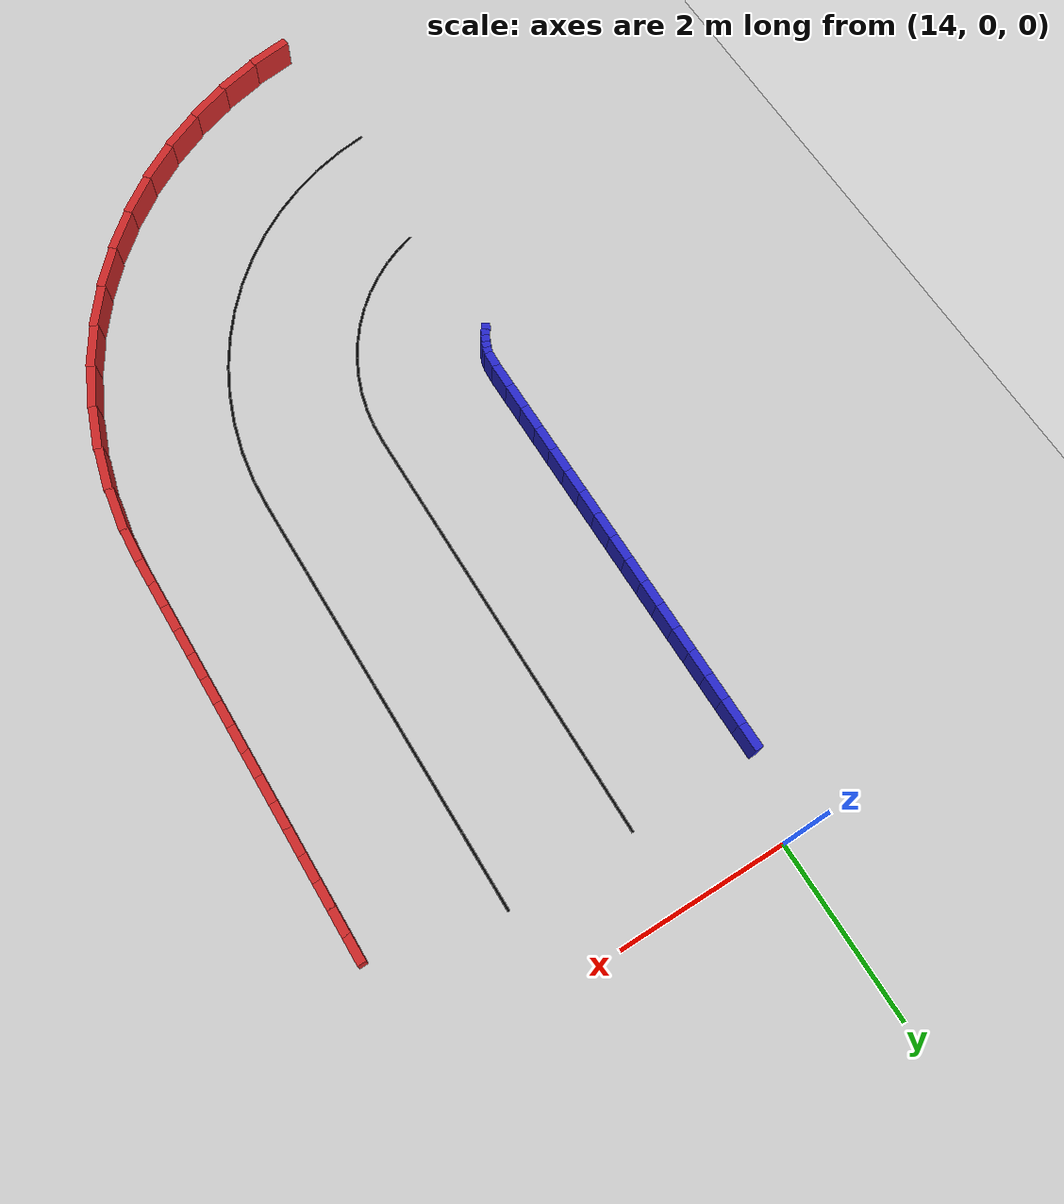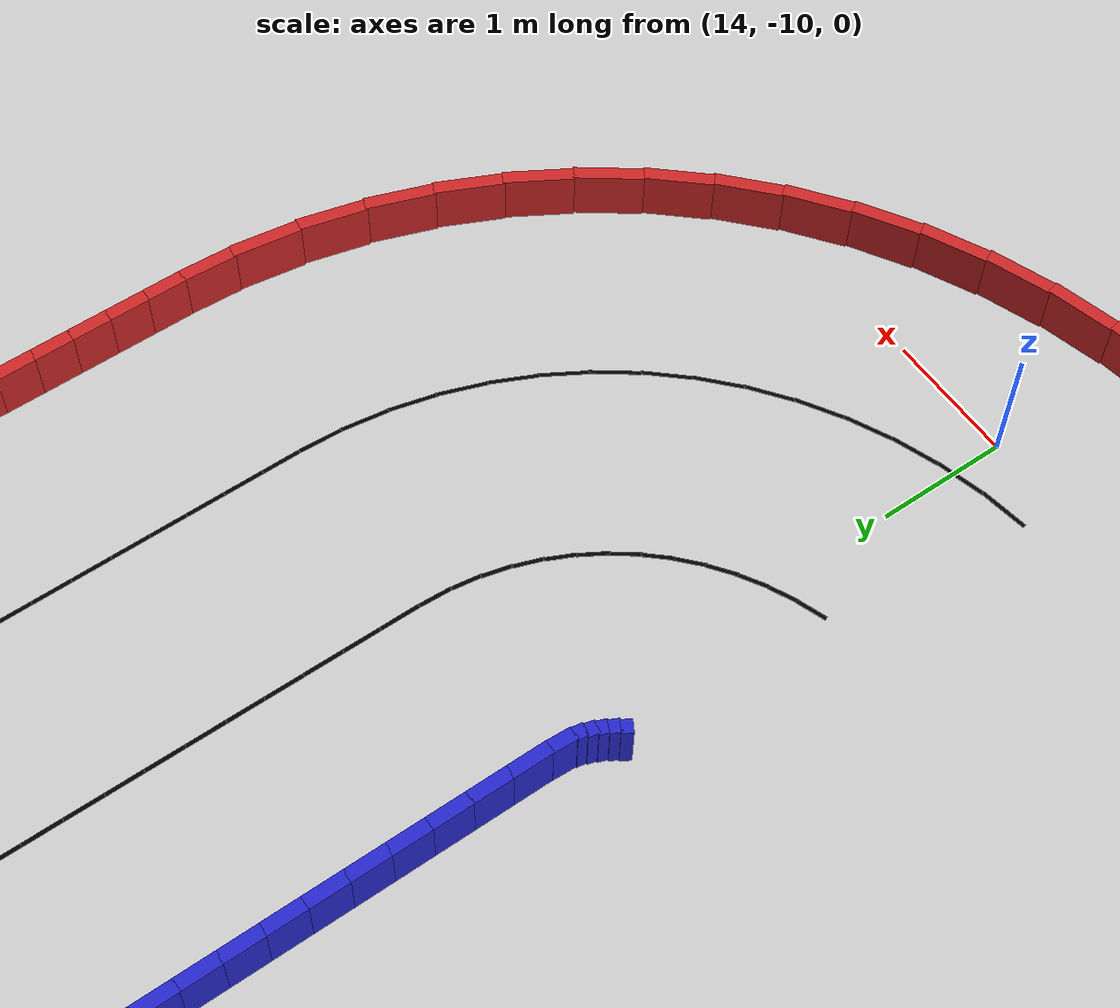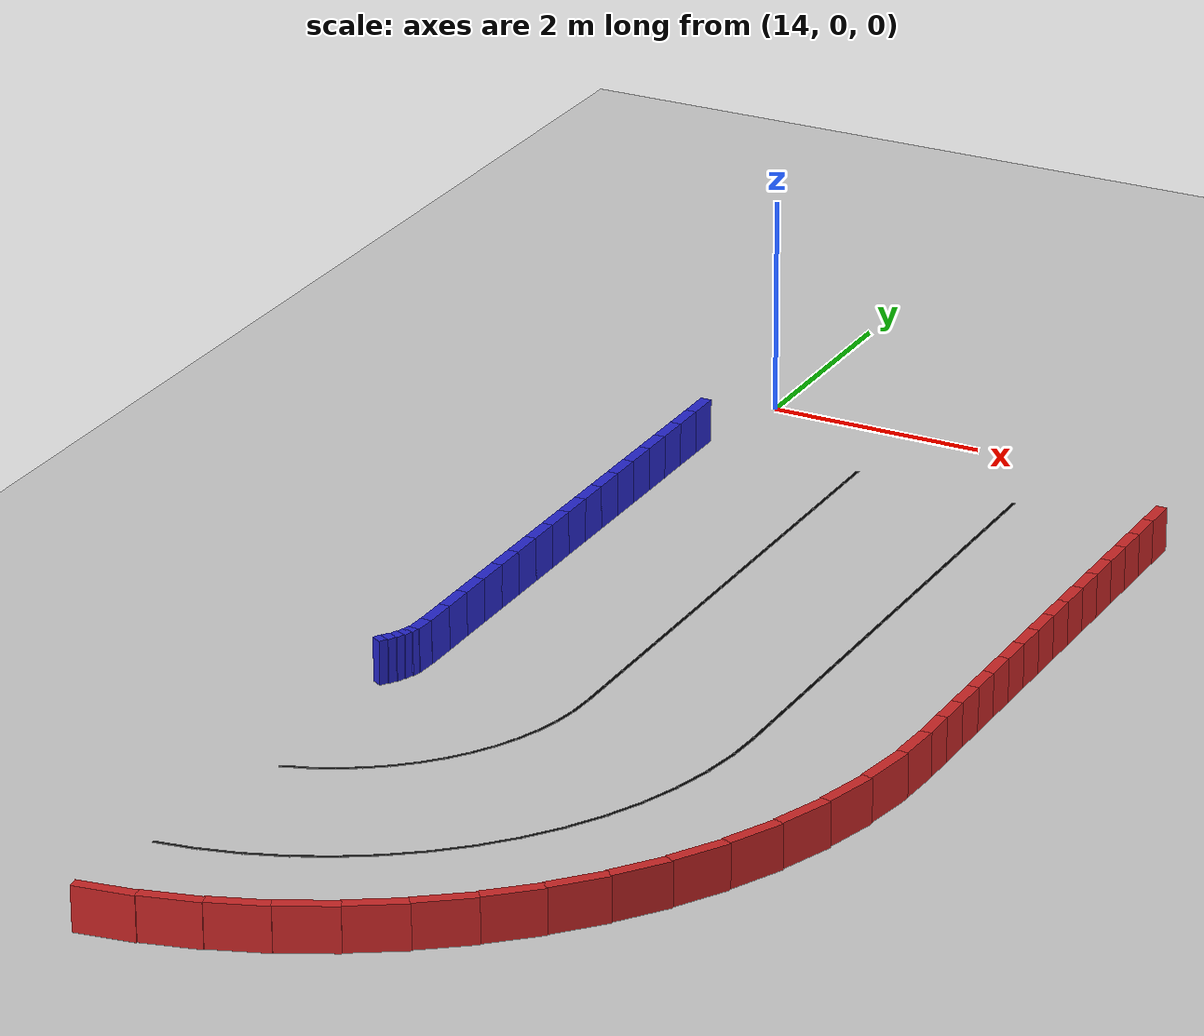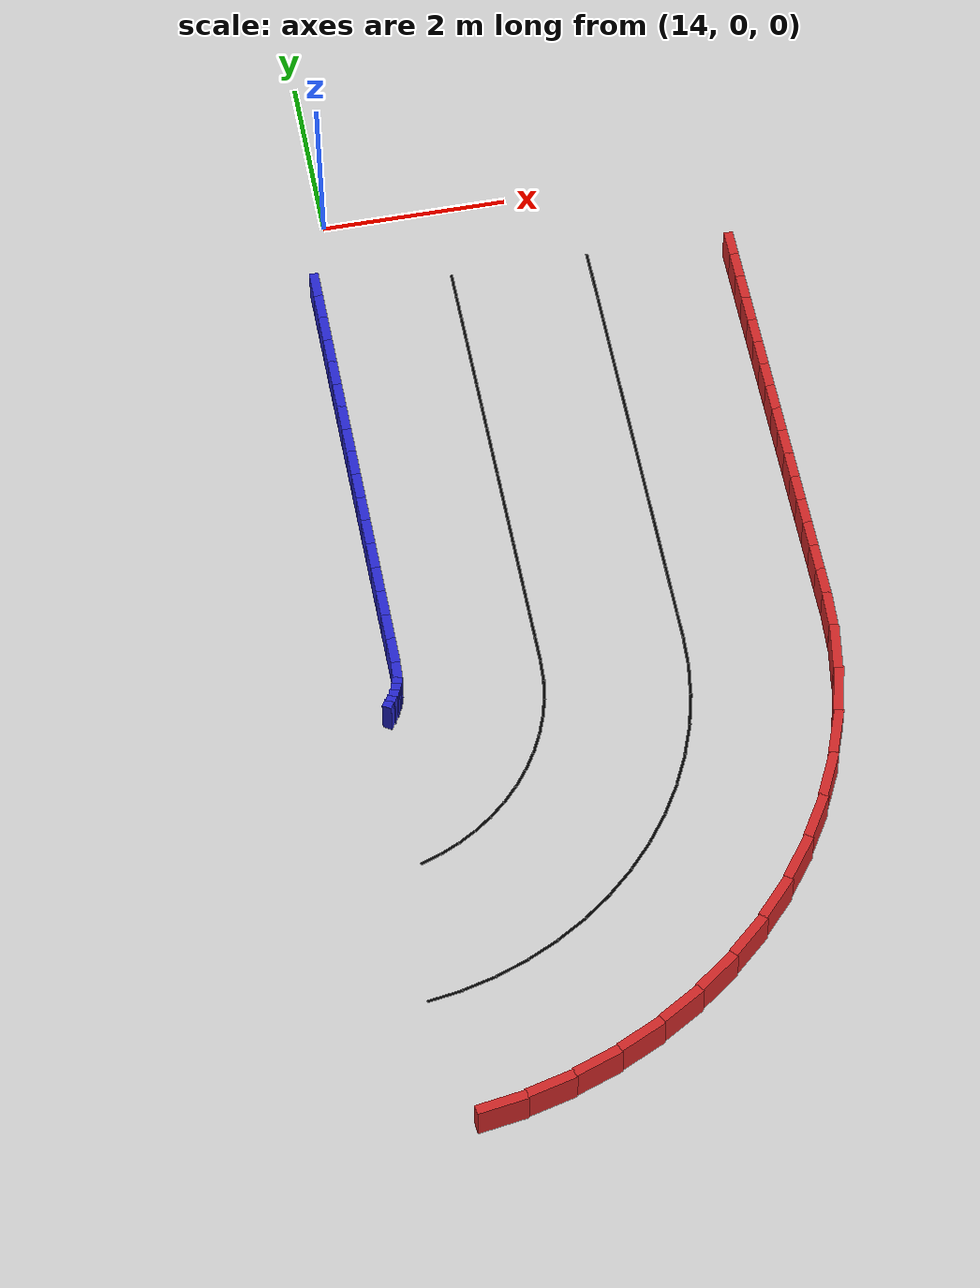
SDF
<sdf version="1.6">
 <world name="3lane_track">
  <include><uri>model://ground_plane</uri></include>
  <include><uri>model://sun</uri></include>
  <model name="iw_153">
   <static>true</static>
   <pose>13.5882 -6.4811 0.200 0 0 1.0308</pose>
   <link name="l">
    <collision name="c"><geometry><box><size>0.0847 0.1 0.4</size></box></geometry></collision>
    <visual name="v">
     <geometry><box><size>0.0847 0.1 0.4</size></box></geometry>
     <material><ambient>0.15 0.15 0.8 1</ambient><diffuse>0.15 0.15 0.8 1</diffuse></material>
    </visual>
   </link>
  </model>
  <model name="iw_154">
   <static>true</static>
   <pose>13.6325 -6.4211 0.200 0 0 1.1290</pose>
   <link name="l">
    <collision name="c"><geometry><box><size>0.0847 0.1 0.4</size></box></geometry></collision>
    <visual name="v">
     <geometry><box><size>0.0847 0.1 0.4</size></box></geometry>
     <material><ambient>0.15 0.15 0.8 1</ambient><diffuse>0.15 0.15 0.8 1</diffuse></material>
    </visual>
   </link>
  </model>
  <model name="iw_155">
   <static>true</static>
   <pose>13.6707 -6.3571 0.200 0 0 1.2272</pose>
   <link name="l">
    <collision name="c"><geometry><box><size>0.0847 0.1 0.4</size></box></geometry></collision>
    <visual name="v">
     <geometry><box><size>0.0847 0.1 0.4</size></box></geometry>
     <material><ambient>0.15 0.15 0.8 1</ambient><diffuse>0.15 0.15 0.8 1</diffuse></material>
    </visual>
   </link>
  </model>
  <model name="iw_156">
   <static>true</static>
   <pose>13.7025 -6.2896 0.200 0 0 1.3254</pose>
   <link name="l">
    <collision name="c"><geometry><box><size>0.0847 0.1 0.4</size></box></geometry></collision>
    <visual name="v">
     <geometry><box><size>0.0847 0.1 0.4</size></box></geometry>
     <material><ambient>0.15 0.15 0.8 1</ambient><diffuse>0.15 0.15 0.8 1</diffuse></material>
    </visual>
   </link>
  </model>
  <model name="iw_157">
   <static>true</static>
   <pose>13.7275 -6.2194 0.200 0 0 1.4235</pose>
   <link name="l">
    <collision name="c"><geometry><box><size>0.0847 0.1 0.4</size></box></geometry></collision>
    <visual name="v">
     <geometry><box><size>0.0847 0.1 0.4</size></box></geometry>
     <material><ambient>0.15 0.15 0.8 1</ambient><diffuse>0.15 0.15 0.8 1</diffuse></material>
    </visual>
   </link>
  </model>
  <model name="iw_158">
   <static>true</static>
   <pose>13.7441 -6.0918 0.200 0 0 1.5217</pose>
   <link name="l">
    <collision name="c"><geometry><box><size>0.1940 0.1 0.4</size></box></geometry></collision>
    <visual name="v">
     <geometry><box><size>0.1940 0.1 0.4</size></box></geometry>
     <material><ambient>0.15 0.15 0.8 1</ambient><diffuse>0.15 0.15 0.8 1</diffuse></material>
    </visual>
   </link>
  </model>
  <model name="iw_159">
   <static>true</static>
   <pose>13.7500 -5.8500 0.200 0 0 1.5708</pose>
   <link name="l">
    <collision name="c"><geometry><box><size>0.3100 0.1 0.4</size></box></geometry></collision>
    <visual name="v">
     <geometry><box><size>0.3100 0.1 0.4</size></box></geometry>
     <material><ambient>0.15 0.15 0.8 1</ambient><diffuse>0.15 0.15 0.8 1</diffuse></material>
    </visual>
   </link>
  </model>
  <model name="iw_160">
   <static>true</static>
   <pose>13.7500 -5.5500 0.200 0 0 1.5708</pose>
   <link name="l">
    <collision name="c"><geometry><box><size>0.3100 0.1 0.4</size></box></geometry></collision>
    <visual name="v">
     <geometry><box><size>0.3100 0.1 0.4</size></box></geometry>
     <material><ambient>0.15 0.15 0.8 1</ambient><diffuse>0.15 0.15 0.8 1</diffuse></material>
    </visual>
   </link>
  </model>
  <model name="iw_161">
   <static>true</static>
   <pose>13.7500 -5.2500 0.200 0 0 1.5708</pose>
   <link name="l">
    <collision name="c"><geometry><box><size>0.3100 0.1 0.4</size></box></geometry></collision>
    <visual name="v">
     <geometry><box><size>0.3100 0.1 0.4</size></box></geometry>
     <material><ambient>0.15 0.15 0.8 1</ambient><diffuse>0.15 0.15 0.8 1</diffuse></material>
    </visual>
   </link>
  </model>
  <model name="iw_162">
   <static>true</static>
   <pose>13.7500 -4.9500 0.200 0 0 1.5708</pose>
   <link name="l">
    <collision name="c"><geometry><box><size>0.3100 0.1 0.4</size></box></geometry></collision>
    <visual name="v">
     <geometry><box><size>0.3100 0.1 0.4</size></box></geometry>
     <material><ambient>0.15 0.15 0.8 1</ambient><diffuse>0.15 0.15 0.8 1</diffuse></material>
    </visual>
   </link>
  </model>
  <model name="iw_163">
   <static>true</static>
   <pose>13.7500 -4.6500 0.200 0 0 1.5708</pose>
   <link name="l">
    <collision name="c"><geometry><box><size>0.3100 0.1 0.4</size></box></geometry></collision>
    <visual name="v">
     <geometry><box><size>0.3100 0.1 0.4</size></box></geometry>
     <material><ambient>0.15 0.15 0.8 1</ambient><diffuse>0.15 0.15 0.8 1</diffuse></material>
    </visual>
   </link>
  </model>
  <model name="iw_164">
   <static>true</static>
   <pose>13.7500 -4.3500 0.200 0 0 1.5708</pose>
   <link name="l">
    <collision name="c"><geometry><box><size>0.3100 0.1 0.4</size></box></geometry></collision>
    <visual name="v">
     <geometry><box><size>0.3100 0.1 0.4</size></box></geometry>
     <material><ambient>0.15 0.15 0.8 1</ambient><diffuse>0.15 0.15 0.8 1</diffuse></material>
    </visual>
   </link>
  </model>
  <model name="iw_165">
   <static>true</static>
   <pose>13.7500 -4.0500 0.200 0 0 1.5708</pose>
   <link name="l">
    <collision name="c"><geometry><box><size>0.3100 0.1 0.4</size></box></geometry></collision>
    <visual name="v">
     <geometry><box><size>0.3100 0.1 0.4</size></box></geometry>
     <material><ambient>0.15 0.15 0.8 1</ambient><diffuse>0.15 0.15 0.8 1</diffuse></material>
    </visual>
   </link>
  </model>
  <model name="iw_166">
   <static>true</static>
   <pose>13.7500 -3.7500 0.200 0 0 1.5708</pose>
   <link name="l">
    <collision name="c"><geometry><box><size>0.3100 0.1 0.4</size></box></geometry></collision>
    <visual name="v">
     <geometry><box><size>0.3100 0.1 0.4</size></box></geometry>
     <material><ambient>0.15 0.15 0.8 1</ambient><diffuse>0.15 0.15 0.8 1</diffuse></material>
    </visual>
   </link>
  </model>
  <model name="iw_167">
   <static>true</static>
   <pose>13.7500 -3.4500 0.200 0 0 1.5708</pose>
   <link name="l">
    <collision name="c"><geometry><box><size>0.3100 0.1 0.4</size></box></geometry></collision>
    <visual name="v">
     <geometry><box><size>0.3100 0.1 0.4</size></box></geometry>
     <material><ambient>0.15 0.15 0.8 1</ambient><diffuse>0.15 0.15 0.8 1</diffuse></material>
    </visual>
   </link>
  </model>
  <model name="iw_168">
   <static>true</static>
   <pose>13.7500 -3.1500 0.200 0 0 1.5708</pose>
   <link name="l">
    <collision name="c"><geometry><box><size>0.3100 0.1 0.4</size></box></geometry></collision>
    <visual name="v">
     <geometry><box><size>0.3100 0.1 0.4</size></box></geometry>
     <material><ambient>0.15 0.15 0.8 1</ambient><diffuse>0.15 0.15 0.8 1</diffuse></material>
    </visual>
   </link>
  </model>
  <model name="iw_169">
   <static>true</static>
   <pose>13.7500 -2.8500 0.200 0 0 1.5708</pose>
   <link name="l">
    <collision name="c"><geometry><box><size>0.3100 0.1 0.4</size></box></geometry></collision>
    <visual name="v">
     <geometry><box><size>0.3100 0.1 0.4</size></box></geometry>
     <material><ambient>0.15 0.15 0.8 1</ambient><diffuse>0.15 0.15 0.8 1</diffuse></material>
    </visual>
   </link>
  </model>
  <model name="iw_170">
   <static>true</static>
   <pose>13.7500 -2.5500 0.200 0 0 1.5708</pose>
   <link name="l">
    <collision name="c"><geometry><box><size>0.3100 0.1 0.4</size></box></geometry></collision>
    <visual name="v">
     <geometry><box><size>0.3100 0.1 0.4</size></box></geometry>
     <material><ambient>0.15 0.15 0.8 1</ambient><diffuse>0.15 0.15 0.8 1</diffuse></material>
    </visual>
   </link>
  </model>
  <model name="iw_171">
   <static>true</static>
   <pose>13.7500 -2.2500 0.200 0 0 1.5708</pose>
   <link name="l">
    <collision name="c"><geometry><box><size>0.3100 0.1 0.4</size></box></geometry></collision>
    <visual name="v">
     <geometry><box><size>0.3100 0.1 0.4</size></box></geometry>
     <material><ambient>0.15 0.15 0.8 1</ambient><diffuse>0.15 0.15 0.8 1</diffuse></material>
    </visual>
   </link>
  </model>
  <model name="iw_172">
   <static>true</static>
   <pose>13.7500 -1.9500 0.200 0 0 1.5708</pose>
   <link name="l">
    <collision name="c"><geometry><box><size>0.3100 0.1 0.4</size></box></geometry></collision>
    <visual name="v">
     <geometry><box><size>0.3100 0.1 0.4</size></box></geometry>
     <material><ambient>0.15 0.15 0.8 1</ambient><diffuse>0.15 0.15 0.8 1</diffuse></material>
    </visual>
   </link>
  </model>
  <model name="iw_173">
   <static>true</static>
   <pose>13.7500 -1.6500 0.200 0 0 1.5708</pose>
   <link name="l">
    <collision name="c"><geometry><box><size>0.3100 0.1 0.4</size></box></geometry></collision>
    <visual name="v">
     <geometry><box><size>0.3100 0.1 0.4</size></box></geometry>
     <material><ambient>0.15 0.15 0.8 1</ambient><diffuse>0.15 0.15 0.8 1</diffuse></material>
    </visual>
   </link>
  </model>
  <model name="iw_174">
   <static>true</static>
   <pose>13.7500 -1.3500 0.200 0 0 1.5708</pose>
   <link name="l">
    <collision name="c"><geometry><box><size>0.3100 0.1 0.4</size></box></geometry></collision>
    <visual name="v">
     <geometry><box><size>0.3100 0.1 0.4</size></box></geometry>
     <material><ambient>0.15 0.15 0.8 1</ambient><diffuse>0.15 0.15 0.8 1</diffuse></material>
    </visual>
   </link>
  </model>
  <model name="iw_175">
   <static>true</static>
   <pose>13.7500 -1.0500 0.200 0 0 1.5708</pose>
   <link name="l">
    <collision name="c"><geometry><box><size>0.3100 0.1 0.4</size></box></geometry></collision>
    <visual name="v">
     <geometry><box><size>0.3100 0.1 0.4</size></box></geometry>
     <material><ambient>0.15 0.15 0.8 1</ambient><diffuse>0.15 0.15 0.8 1</diffuse></material>
    </visual>
   </link>
  </model>
  <model name="ow_144">
   <static>true</static>
   <pose>13.8781 -11.1681 0.200 0 0 0.1473</pose>
   <link name="l">
    <collision name="c"><geometry><box><size>0.5251 0.1 0.4</size></box></geometry></collision>
    <visual name="v">
     <geometry><box><size>0.5251 0.1 0.4</size></box></geometry>
     <material><ambient>0.8 0.15 0.15 1</ambient><diffuse>0.8 0.15 0.15 1</diffuse></material>
    </visual>
   </link>
  </model>
  <model name="ow_145">
   <static>true</static>
   <pose>14.3804 -11.0571 0.200 0 0 0.2454</pose>
   <link name="l">
    <collision name="c"><geometry><box><size>0.5251 0.1 0.4</size></box></geometry></collision>
    <visual name="v">
     <geometry><box><size>0.5251 0.1 0.4</size></box></geometry>
     <material><ambient>0.8 0.15 0.15 1</ambient><diffuse>0.8 0.15 0.15 1</diffuse></material>
    </visual>
   </link>
  </model>
  <model name="ow_146">
   <static>true</static>
   <pose>14.8695 -10.8975 0.200 0 0 0.3436</pose>
   <link name="l">
    <collision name="c"><geometry><box><size>0.5251 0.1 0.4</size></box></geometry></collision>
    <visual name="v">
     <geometry><box><size>0.5251 0.1 0.4</size></box></geometry>
     <material><ambient>0.8 0.15 0.15 1</ambient><diffuse>0.8 0.15 0.15 1</diffuse></material>
    </visual>
   </link>
  </model>
  <model name="ow_147">
   <static>true</static>
   <pose>15.3405 -10.6906 0.200 0 0 0.4418</pose>
   <link name="l">
    <collision name="c"><geometry><box><size>0.5251 0.1 0.4</size></box></geometry></collision>
    <visual name="v">
     <geometry><box><size>0.5251 0.1 0.4</size></box></geometry>
     <material><ambient>0.8 0.15 0.15 1</ambient><diffuse>0.8 0.15 0.15 1</diffuse></material>
    </visual>
   </link>
  </model>
  <model name="ow_148">
   <static>true</static>
   <pose>15.7890 -10.4386 0.200 0 0 0.5400</pose>
   <link name="l">
    <collision name="c"><geometry><box><size>0.5251 0.1 0.4</size></box></geometry></collision>
    <visual name="v">
     <geometry><box><size>0.5251 0.1 0.4</size></box></geometry>
     <material><ambient>0.8 0.15 0.15 1</ambient><diffuse>0.8 0.15 0.15 1</diffuse></material>
    </visual>
   </link>
  </model>
  <model name="ow_149">
   <static>true</static>
   <pose>16.2106 -10.1439 0.200 0 0 0.6381</pose>
   <link name="l">
    <collision name="c"><geometry><box><size>0.5251 0.1 0.4</size></box></geometry></collision>
    <visual name="v">
     <geometry><box><size>0.5251 0.1 0.4</size></box></geometry>
     <material><ambient>0.8 0.15 0.15 1</ambient><diffuse>0.8 0.15 0.15 1</diffuse></material>
    </visual>
   </link>
  </model>
  <model name="ow_150">
   <static>true</static>
   <pose>16.6013 -9.8092 0.200 0 0 0.7363</pose>
   <link name="l">
    <collision name="c"><geometry><box><size>0.5251 0.1 0.4</size></box></geometry></collision>
    <visual name="v">
     <geometry><box><size>0.5251 0.1 0.4</size></box></geometry>
     <material><ambient>0.8 0.15 0.15 1</ambient><diffuse>0.8 0.15 0.15 1</diffuse></material>
    </visual>
   </link>
  </model>
  <model name="ow_151">
   <static>true</static>
   <pose>16.9574 -9.4379 0.200 0 0 0.8345</pose>
   <link name="l">
    <collision name="c"><geometry><box><size>0.5251 0.1 0.4</size></box></geometry></collision>
    <visual name="v">
     <geometry><box><size>0.5251 0.1 0.4</size></box></geometry>
     <material><ambient>0.8 0.15 0.15 1</ambient><diffuse>0.8 0.15 0.15 1</diffuse></material>
    </visual>
   </link>
  </model>
  <model name="ow_152">
   <static>true</static>
   <pose>17.2753 -9.0335 0.200 0 0 0.9327</pose>
   <link name="l">
    <collision name="c"><geometry><box><size>0.5251 0.1 0.4</size></box></geometry></collision>
    <visual name="v">
     <geometry><box><size>0.5251 0.1 0.4</size></box></geometry>
     <material><ambient>0.8 0.15 0.15 1</ambient><diffuse>0.8 0.15 0.15 1</diffuse></material>
    </visual>
   </link>
  </model>
  <model name="ow_153">
   <static>true</static>
   <pose>17.5520 -8.5998 0.200 0 0 1.0308</pose>
   <link name="l">
    <collision name="c"><geometry><box><size>0.5251 0.1 0.4</size></box></geometry></collision>
    <visual name="v">
     <geometry><box><size>0.5251 0.1 0.4</size></box></geometry>
     <material><ambient>0.8 0.15 0.15 1</ambient><diffuse>0.8 0.15 0.15 1</diffuse></material>
    </visual>
   </link>
  </model>
  <model name="ow_154">
   <static>true</static>
   <pose>17.7849 -8.1411 0.200 0 0 1.1290</pose>
   <link name="l">
    <collision name="c"><geometry><box><size>0.5251 0.1 0.4</size></box></geometry></collision>
    <visual name="v">
     <geometry><box><size>0.5251 0.1 0.4</size></box></geometry>
     <material><ambient>0.8 0.15 0.15 1</ambient><diffuse>0.8 0.15 0.15 1</diffuse></material>
    </visual>
   </link>
  </model>
  <model name="ow_155">
   <static>true</static>
   <pose>17.9718 -7.6618 0.200 0 0 1.2272</pose>
   <link name="l">
    <collision name="c"><geometry><box><size>0.5251 0.1 0.4</size></box></geometry></collision>
    <visual name="v">
     <geometry><box><size>0.5251 0.1 0.4</size></box></geometry>
     <material><ambient>0.8 0.15 0.15 1</ambient><diffuse>0.8 0.15 0.15 1</diffuse></material>
    </visual>
   </link>
  </model>
  <model name="ow_156">
   <static>true</static>
   <pose>18.1107 -7.1665 0.200 0 0 1.3254</pose>
   <link name="l">
    <collision name="c"><geometry><box><size>0.5251 0.1 0.4</size></box></geometry></collision>
    <visual name="v">
     <geometry><box><size>0.5251 0.1 0.4</size></box></geometry>
     <material><ambient>0.8 0.15 0.15 1</ambient><diffuse>0.8 0.15 0.15 1</diffuse></material>
    </visual>
   </link>
  </model>
  <model name="ow_157">
   <static>true</static>
   <pose>18.2004 -6.6599 0.200 0 0 1.4235</pose>
   <link name="l">
    <collision name="c"><geometry><box><size>0.5251 0.1 0.4</size></box></geometry></collision>
    <visual name="v">
     <geometry><box><size>0.5251 0.1 0.4</size></box></geometry>
     <material><ambient>0.8 0.15 0.15 1</ambient><diffuse>0.8 0.15 0.15 1</diffuse></material>
    </visual>
   </link>
  </model>
  <model name="ow_158">
   <static>true</static>
   <pose>18.2414 -6.2022 0.200 0 0 1.5217</pose>
   <link name="l">
    <collision name="c"><geometry><box><size>0.4148 0.1 0.4</size></box></geometry></collision>
    <visual name="v">
     <geometry><box><size>0.4148 0.1 0.4</size></box></geometry>
     <material><ambient>0.8 0.15 0.15 1</ambient><diffuse>0.8 0.15 0.15 1</diffuse></material>
    </visual>
   </link>
  </model>
  <model name="ow_159">
   <static>true</static>
   <pose>18.2500 -5.8500 0.200 0 0 1.5708</pose>
   <link name="l">
    <collision name="c"><geometry><box><size>0.3100 0.1 0.4</size></box></geometry></collision>
    <visual name="v">
     <geometry><box><size>0.3100 0.1 0.4</size></box></geometry>
     <material><ambient>0.8 0.15 0.15 1</ambient><diffuse>0.8 0.15 0.15 1</diffuse></material>
    </visual>
   </link>
  </model>
  <model name="ow_160">
   <static>true</static>
   <pose>18.2500 -5.5500 0.200 0 0 1.5708</pose>
   <link name="l">
    <collision name="c"><geometry><box><size>0.3100 0.1 0.4</size></box></geometry></collision>
    <visual name="v">
     <geometry><box><size>0.3100 0.1 0.4</size></box></geometry>
     <material><ambient>0.8 0.15 0.15 1</ambient><diffuse>0.8 0.15 0.15 1</diffuse></material>
    </visual>
   </link>
  </model>
  <model name="ow_161">
   <static>true</static>
   <pose>18.2500 -5.2500 0.200 0 0 1.5708</pose>
   <link name="l">
    <collision name="c"><geometry><box><size>0.3100 0.1 0.4</size></box></geometry></collision>
    <visual name="v">
     <geometry><box><size>0.3100 0.1 0.4</size></box></geometry>
     <material><ambient>0.8 0.15 0.15 1</ambient><diffuse>0.8 0.15 0.15 1</diffuse></material>
    </visual>
   </link>
  </model>
  <model name="ow_162">
   <static>true</static>
   <pose>18.2500 -4.9500 0.200 0 0 1.5708</pose>
   <link name="l">
    <collision name="c"><geometry><box><size>0.3100 0.1 0.4</size></box></geometry></collision>
    <visual name="v">
     <geometry><box><size>0.3100 0.1 0.4</size></box></geometry>
     <material><ambient>0.8 0.15 0.15 1</ambient><diffuse>0.8 0.15 0.15 1</diffuse></material>
    </visual>
   </link>
  </model>
  <model name="ow_163">
   <static>true</static>
   <pose>18.2500 -4.6500 0.200 0 0 1.5708</pose>
   <link name="l">
    <collision name="c"><geometry><box><size>0.3100 0.1 0.4</size></box></geometry></collision>
    <visual name="v">
     <geometry><box><size>0.3100 0.1 0.4</size></box></geometry>
     <material><ambient>0.8 0.15 0.15 1</ambient><diffuse>0.8 0.15 0.15 1</diffuse></material>
    </visual>
   </link>
  </model>
  <model name="ow_164">
   <static>true</static>
   <pose>18.2500 -4.3500 0.200 0 0 1.5708</pose>
   <link name="l">
    <collision name="c"><geometry><box><size>0.3100 0.1 0.4</size></box></geometry></collision>
    <visual name="v">
     <geometry><box><size>0.3100 0.1 0.4</size></box></geometry>
     <material><ambient>0.8 0.15 0.15 1</ambient><diffuse>0.8 0.15 0.15 1</diffuse></material>
    </visual>
   </link>
  </model>
  <model name="ow_165">
   <static>true</static>
   <pose>18.2500 -4.0500 0.200 0 0 1.5708</pose>
   <link name="l">
    <collision name="c"><geometry><box><size>0.3100 0.1 0.4</size></box></geometry></collision>
    <visual name="v">
     <geometry><box><size>0.3100 0.1 0.4</size></box></geometry>
     <material><ambient>0.8 0.15 0.15 1</ambient><diffuse>0.8 0.15 0.15 1</diffuse></material>
    </visual>
   </link>
  </model>
  <model name="ow_166">
   <static>true</static>
   <pose>18.2500 -3.7500 0.200 0 0 1.5708</pose>
   <link name="l">
    <collision name="c"><geometry><box><size>0.3100 0.1 0.4</size></box></geometry></collision>
    <visual name="v">
     <geometry><box><size>0.3100 0.1 0.4</size></box></geometry>
     <material><ambient>0.8 0.15 0.15 1</ambient><diffuse>0.8 0.15 0.15 1</diffuse></material>
    </visual>
   </link>
  </model>
  <model name="ow_167">
   <static>true</static>
   <pose>18.2500 -3.4500 0.200 0 0 1.5708</pose>
   <link name="l">
    <collision name="c"><geometry><box><size>0.3100 0.1 0.4</size></box></geometry></collision>
    <visual name="v">
     <geometry><box><size>0.3100 0.1 0.4</size></box></geometry>
     <material><ambient>0.8 0.15 0.15 1</ambient><diffuse>0.8 0.15 0.15 1</diffuse></material>
    </visual>
   </link>
  </model>
  <model name="ow_168">
   <static>true</static>
   <pose>18.2500 -3.1500 0.200 0 0 1.5708</pose>
   <link name="l">
    <collision name="c"><geometry><box><size>0.3100 0.1 0.4</size></box></geometry></collision>
    <visual name="v">
     <geometry><box><size>0.3100 0.1 0.4</size></box></geometry>
     <material><ambient>0.8 0.15 0.15 1</ambient><diffuse>0.8 0.15 0.15 1</diffuse></material>
    </visual>
   </link>
  </model>
  <model name="ow_169">
   <static>true</static>
   <pose>18.2500 -2.8500 0.200 0 0 1.5708</pose>
   <link name="l">
    <collision name="c"><geometry><box><size>0.3100 0.1 0.4</size></box></geometry></collision>
    <visual name="v">
     <geometry><box><size>0.3100 0.1 0.4</size></box></geometry>
     <material><ambient>0.8 0.15 0.15 1</ambient><diffuse>0.8 0.15 0.15 1</diffuse></material>
    </visual>
   </link>
  </model>
  <model name="ow_170">
   <static>true</static>
   <pose>18.2500 -2.5500 0.200 0 0 1.5708</pose>
   <link name="l">
    <collision name="c"><geometry><box><size>0.3100 0.1 0.4</size></box></geometry></collision>
    <visual name="v">
     <geometry><box><size>0.3100 0.1 0.4</size></box></geometry>
     <material><ambient>0.8 0.15 0.15 1</ambient><diffuse>0.8 0.15 0.15 1</diffuse></material>
    </visual>
   </link>
  </model>
  <model name="ow_171">
   <static>true</static>
   <pose>18.2500 -2.2500 0.200 0 0 1.5708</pose>
   <link name="l">
    <collision name="c"><geometry><box><size>0.3100 0.1 0.4</size></box></geometry></collision>
    <visual name="v">
     <geometry><box><size>0.3100 0.1 0.4</size></box></geometry>
     <material><ambient>0.8 0.15 0.15 1</ambient><diffuse>0.8 0.15 0.15 1</diffuse></material>
    </visual>
   </link>
  </model>
  <model name="ow_172">
   <static>true</static>
   <pose>18.2500 -1.9500 0.200 0 0 1.5708</pose>
   <link name="l">
    <collision name="c"><geometry><box><size>0.3100 0.1 0.4</size></box></geometry></collision>
    <visual name="v">
     <geometry><box><size>0.3100 0.1 0.4</size></box></geometry>
     <material><ambient>0.8 0.15 0.15 1</ambient><diffuse>0.8 0.15 0.15 1</diffuse></material>
    </visual>
   </link>
  </model>
  <model name="ow_173">
   <static>true</static>
   <pose>18.2500 -1.6500 0.200 0 0 1.5708</pose>
   <link name="l">
    <collision name="c"><geometry><box><size>0.3100 0.1 0.4</size></box></geometry></collision>
    <visual name="v">
     <geometry><box><size>0.3100 0.1 0.4</size></box></geometry>
     <material><ambient>0.8 0.15 0.15 1</ambient><diffuse>0.8 0.15 0.15 1</diffuse></material>
    </visual>
   </link>
  </model>
  <model name="ow_174">
   <static>true</static>
   <pose>18.2500 -1.3500 0.200 0 0 1.5708</pose>
   <link name="l">
    <collision name="c"><geometry><box><size>0.3100 0.1 0.4</size></box></geometry></collision>
    <visual name="v">
     <geometry><box><size>0.3100 0.1 0.4</size></box></geometry>
     <material><ambient>0.8 0.15 0.15 1</ambient><diffuse>0.8 0.15 0.15 1</diffuse></material>
    </visual>
   </link>
  </model>
  <model name="line_289">
   <static>true</static>
   <pose>13.5858 -9.6987 0.002 0 0 0.1473</pose>
   <link name="l">
    <visual name="v">
     <geometry><box><size>0.3779 0.03 0.002</size></box></geometry>
     <material><ambient>0 0 0 1</ambient><diffuse>0 0 0 1</diffuse></material>
    </visual>
   </link>
  </model>
  <model name="line_291">
   <static>true</static>
   <pose>13.9455 -9.6234 0.002 0 0 0.2454</pose>
   <link name="l">
    <visual name="v">
     <geometry><box><size>0.3779 0.03 0.002</size></box></geometry>
     <material><ambient>0 0 0 1</ambient><diffuse>0 0 0 1</diffuse></material>
    </visual>
   </link>
  </model>
  <model name="line_292">
   <static>true</static>
   <pose>13.7228 -8.1292 0.002 0 0 0.3436</pose>
   <link name="l">
    <visual name="v">
     <geometry><box><size>0.2309 0.03 0.002</size></box></geometry>
     <material><ambient>0 0 0 1</ambient><diffuse>0 0 0 1</diffuse></material>
    </visual>
   </link>
  </model>
  <model name="line_293">
   <static>true</static>
   <pose>14.2961 -9.5133 0.002 0 0 0.3436</pose>
   <link name="l">
    <visual name="v">
     <geometry><box><size>0.3779 0.03 0.002</size></box></geometry>
     <material><ambient>0 0 0 1</ambient><diffuse>0 0 0 1</diffuse></material>
    </visual>
   </link>
  </model>
  <model name="line_294">
   <static>true</static>
   <pose>13.9280 -8.0481 0.002 0 0 0.4418</pose>
   <link name="l">
    <visual name="v">
     <geometry><box><size>0.2309 0.03 0.002</size></box></geometry>
     <material><ambient>0 0 0 1</ambient><diffuse>0 0 0 1</diffuse></material>
    </visual>
   </link>
  </model>
  <model name="line_295">
   <static>true</static>
   <pose>14.6342 -9.3693 0.002 0 0 0.4418</pose>
   <link name="l">
    <visual name="v">
     <geometry><box><size>0.3779 0.03 0.002</size></box></geometry>
     <material><ambient>0 0 0 1</ambient><diffuse>0 0 0 1</diffuse></material>
    </visual>
   </link>
  </model>
  <model name="line_296">
   <static>true</static>
   <pose>14.1243 -7.9472 0.002 0 0 0.5400</pose>
   <link name="l">
    <visual name="v">
     <geometry><box><size>0.2309 0.03 0.002</size></box></geometry>
     <material><ambient>0 0 0 1</ambient><diffuse>0 0 0 1</diffuse></material>
    </visual>
   </link>
  </model>
  <model name="line_297">
   <static>true</static>
   <pose>14.9566 -9.1929 0.002 0 0 0.5400</pose>
   <link name="l">
    <visual name="v">
     <geometry><box><size>0.3779 0.03 0.002</size></box></geometry>
     <material><ambient>0 0 0 1</ambient><diffuse>0 0 0 1</diffuse></material>
    </visual>
   </link>
  </model>
  <model name="line_298">
   <static>true</static>
   <pose>14.3097 -7.8277 0.002 0 0 0.6381</pose>
   <link name="l">
    <visual name="v">
     <geometry><box><size>0.2309 0.03 0.002</size></box></geometry>
     <material><ambient>0 0 0 1</ambient><diffuse>0 0 0 1</diffuse></material>
    </visual>
   </link>
  </model>
  <model name="line_299">
   <static>true</static>
   <pose>15.2602 -8.9858 0.002 0 0 0.6381</pose>
   <link name="l">
    <visual name="v">
     <geometry><box><size>0.3779 0.03 0.002</size></box></geometry>
     <material><ambient>0 0 0 1</ambient><diffuse>0 0 0 1</diffuse></material>
    </visual>
   </link>
  </model>
  <model name="line_300">
   <static>true</static>
   <pose>14.4826 -7.6905 0.002 0 0 0.7363</pose>
   <link name="l">
    <visual name="v">
     <geometry><box><size>0.2309 0.03 0.002</size></box></geometry>
     <material><ambient>0 0 0 1</ambient><diffuse>0 0 0 1</diffuse></material>
    </visual>
   </link>
  </model>
  <model name="line_301">
   <static>true</static>
   <pose>15.5419 -8.7499 0.002 0 0 0.7363</pose>
   <link name="l">
    <visual name="v">
     <geometry><box><size>0.3779 0.03 0.002</size></box></geometry>
     <material><ambient>0 0 0 1</ambient><diffuse>0 0 0 1</diffuse></material>
    </visual>
   </link>
  </model>
  <model name="line_302">
   <static>true</static>
   <pose>14.6411 -7.5370 0.002 0 0 0.8345</pose>
   <link name="l">
    <visual name="v">
     <geometry><box><size>0.2309 0.03 0.002</size></box></geometry>
     <material><ambient>0 0 0 1</ambient><diffuse>0 0 0 1</diffuse></material>
    </visual>
   </link>
  </model>
  <model name="line_303">
   <static>true</static>
   <pose>15.7992 -8.4875 0.002 0 0 0.8345</pose>
   <link name="l">
    <visual name="v">
     <geometry><box><size>0.3779 0.03 0.002</size></box></geometry>
     <material><ambient>0 0 0 1</ambient><diffuse>0 0 0 1</diffuse></material>
    </visual>
   </link>
  </model>
  <model name="line_304">
   <static>true</static>
   <pose>14.7839 -7.3688 0.002 0 0 0.9327</pose>
   <link name="l">
    <visual name="v">
     <geometry><box><size>0.2309 0.03 0.002</size></box></geometry>
     <material><ambient>0 0 0 1</ambient><diffuse>0 0 0 1</diffuse></material>
    </visual>
   </link>
  </model>
  <model name="line_305">
   <static>true</static>
   <pose>16.0296 -8.2011 0.002 0 0 0.9327</pose>
   <link name="l">
    <visual name="v">
     <geometry><box><size>0.3779 0.03 0.002</size></box></geometry>
     <material><ambient>0 0 0 1</ambient><diffuse>0 0 0 1</diffuse></material>
    </visual>
   </link>
  </model>
  <model name="line_306">
   <static>true</static>
   <pose>14.9094 -7.1873 0.002 0 0 1.0308</pose>
   <link name="l">
    <visual name="v">
     <geometry><box><size>0.2309 0.03 0.002</size></box></geometry>
     <material><ambient>0 0 0 1</ambient><diffuse>0 0 0 1</diffuse></material>
    </visual>
   </link>
  </model>
  <model name="line_307">
   <static>true</static>
   <pose>16.2307 -7.8936 0.002 0 0 1.0308</pose>
   <link name="l">
    <visual name="v">
     <geometry><box><size>0.3779 0.03 0.002</size></box></geometry>
     <material><ambient>0 0 0 1</ambient><diffuse>0 0 0 1</diffuse></material>
    </visual>
   </link>
  </model>
  <model name="line_308">
   <static>true</static>
   <pose>15.0166 -6.9945 0.002 0 0 1.1290</pose>
   <link name="l">
    <visual name="v">
     <geometry><box><size>0.2309 0.03 0.002</size></box></geometry>
     <material><ambient>0 0 0 1</ambient><diffuse>0 0 0 1</diffuse></material>
    </visual>
   </link>
  </model>
  <model name="line_309">
   <static>true</static>
   <pose>16.4008 -7.5678 0.002 0 0 1.1290</pose>
   <link name="l">
    <visual name="v">
     <geometry><box><size>0.3779 0.03 0.002</size></box></geometry>
     <material><ambient>0 0 0 1</ambient><diffuse>0 0 0 1</diffuse></material>
    </visual>
   </link>
  </model>
  <model name="line_310">
   <static>true</static>
   <pose>15.1044 -6.7920 0.002 0 0 1.2272</pose>
   <link name="l">
    <visual name="v">
     <geometry><box><size>0.2309 0.03 0.002</size></box></geometry>
     <material><ambient>0 0 0 1</ambient><diffuse>0 0 0 1</diffuse></material>
    </visual>
   </link>
  </model>
  <model name="line_311">
   <static>true</static>
   <pose>16.5381 -7.2269 0.002 0 0 1.2272</pose>
   <link name="l">
    <visual name="v">
     <geometry><box><size>0.3779 0.03 0.002</size></box></geometry>
     <material><ambient>0 0 0 1</ambient><diffuse>0 0 0 1</diffuse></material>
    </visual>
   </link>
  </model>
  <model name="line_312">
   <static>true</static>
   <pose>15.1719 -6.5819 0.002 0 0 1.3254</pose>
   <link name="l">
    <visual name="v">
     <geometry><box><size>0.2309 0.03 0.002</size></box></geometry>
     <material><ambient>0 0 0 1</ambient><diffuse>0 0 0 1</diffuse></material>
    </visual>
   </link>
  </model>
  <model name="line_313">
   <static>true</static>
   <pose>16.6413 -6.8742 0.002 0 0 1.3254</pose>
   <link name="l">
    <visual name="v">
     <geometry><box><size>0.3779 0.03 0.002</size></box></geometry>
     <material><ambient>0 0 0 1</ambient><diffuse>0 0 0 1</diffuse></material>
    </visual>
   </link>
  </model>
  <model name="line_314">
   <static>true</static>
   <pose>15.2185 -6.3662 0.002 0 0 1.4235</pose>
   <link name="l">
    <visual name="v">
     <geometry><box><size>0.2309 0.03 0.002</size></box></geometry>
     <material><ambient>0 0 0 1</ambient><diffuse>0 0 0 1</diffuse></material>
    </visual>
   </link>
  </model>
  <model name="line_315">
   <static>true</static>
   <pose>16.7094 -6.5131 0.002 0 0 1.4235</pose>
   <link name="l">
    <visual name="v">
     <geometry><box><size>0.3779 0.03 0.002</size></box></geometry>
     <material><ambient>0 0 0 1</ambient><diffuse>0 0 0 1</diffuse></material>
    </visual>
   </link>
  </model>
  <model name="line_316">
   <static>true</static>
   <pose>15.2432 -6.1286 0.002 0 0 1.5217</pose>
   <link name="l">
    <visual name="v">
     <geometry><box><size>0.2676 0.03 0.002</size></box></geometry>
     <material><ambient>0 0 0 1</ambient><diffuse>0 0 0 1</diffuse></material>
    </visual>
   </link>
  </model>
  <model name="line_317">
   <static>true</static>
   <pose>16.7423 -6.1654 0.002 0 0 1.5217</pose>
   <link name="l">
    <visual name="v">
     <geometry><box><size>0.3412 0.03 0.002</size></box></geometry>
     <material><ambient>0 0 0 1</ambient><diffuse>0 0 0 1</diffuse></material>
    </visual>
   </link>
  </model>
  <model name="line_318">
   <static>true</static>
   <pose>15.2500 -5.8500 0.002 0 0 1.5708</pose>
   <link name="l">
    <visual name="v">
     <geometry><box><size>0.3100 0.03 0.002</size></box></geometry>
     <material><ambient>0 0 0 1</ambient><diffuse>0 0 0 1</diffuse></material>
    </visual>
   </link>
  </model>
  <model name="line_319">
   <static>true</static>
   <pose>16.7500 -5.8500 0.002 0 0 1.5708</pose>
   <link name="l">
    <visual name="v">
     <geometry><box><size>0.3100 0.03 0.002</size></box></geometry>
     <material><ambient>0 0 0 1</ambient><diffuse>0 0 0 1</diffuse></material>
    </visual>
   </link>
  </model>
  <model name="line_320">
   <static>true</static>
   <pose>15.2500 -5.5500 0.002 0 0 1.5708</pose>
   <link name="l">
    <visual name="v">
     <geometry><box><size>0.3100 0.03 0.002</size></box></geometry>
     <material><ambient>0 0 0 1</ambient><diffuse>0 0 0 1</diffuse></material>
    </visual>
   </link>
  </model>
  <model name="line_321">
   <static>true</static>
   <pose>16.7500 -5.5500 0.002 0 0 1.5708</pose>
   <link name="l">
    <visual name="v">
     <geometry><box><size>0.3100 0.03 0.002</size></box></geometry>
     <material><ambient>0 0 0 1</ambient><diffuse>0 0 0 1</diffuse></material>
    </visual>
   </link>
  </model>
  <model name="line_322">
   <static>true</static>
   <pose>15.2500 -5.2500 0.002 0 0 1.5708</pose>
   <link name="l">
    <visual name="v">
     <geometry><box><size>0.3100 0.03 0.002</size></box></geometry>
     <material><ambient>0 0 0 1</ambient><diffuse>0 0 0 1</diffuse></material>
    </visual>
   </link>
  </model>
  <model name="line_323">
   <static>true</static>
   <pose>16.7500 -5.2500 0.002 0 0 1.5708</pose>
   <link name="l">
    <visual name="v">
     <geometry><box><size>0.3100 0.03 0.002</size></box></geometry>
     <material><ambient>0 0 0 1</ambient><diffuse>0 0 0 1</diffuse></material>
    </visual>
   </link>
  </model>
  <model name="line_324">
   <static>true</static>
   <pose>15.2500 -4.9500 0.002 0 0 1.5708</pose>
   <link name="l">
    <visual name="v">
     <geometry><box><size>0.3100 0.03 0.002</size></box></geometry>
     <material><ambient>0 0 0 1</ambient><diffuse>0 0 0 1</diffuse></material>
    </visual>
   </link>
  </model>
  <model name="line_325">
   <static>true</static>
   <pose>16.7500 -4.9500 0.002 0 0 1.5708</pose>
   <link name="l">
    <visual name="v">
     <geometry><box><size>0.3100 0.03 0.002</size></box></geometry>
     <material><ambient>0 0 0 1</ambient><diffuse>0 0 0 1</diffuse></material>
    </visual>
   </link>
  </model>
  <model name="line_326">
   <static>true</static>
   <pose>15.2500 -4.6500 0.002 0 0 1.5708</pose>
   <link name="l">
    <visual name="v">
     <geometry><box><size>0.3100 0.03 0.002</size></box></geometry>
     <material><ambient>0 0 0 1</ambient><diffuse>0 0 0 1</diffuse></material>
    </visual>
   </link>
  </model>
  <model name="line_327">
   <static>true</static>
   <pose>16.7500 -4.6500 0.002 0 0 1.5708</pose>
   <link name="l">
    <visual name="v">
     <geometry><box><size>0.3100 0.03 0.002</size></box></geometry>
     <material><ambient>0 0 0 1</ambient><diffuse>0 0 0 1</diffuse></material>
    </visual>
   </link>
  </model>
  <model name="line_328">
   <static>true</static>
   <pose>15.2500 -4.3500 0.002 0 0 1.5708</pose>
   <link name="l">
    <visual name="v">
     <geometry><box><size>0.3100 0.03 0.002</size></box></geometry>
     <material><ambient>0 0 0 1</ambient><diffuse>0 0 0 1</diffuse></material>
    </visual>
   </link>
  </model>
  <model name="line_329">
   <static>true</static>
   <pose>16.7500 -4.3500 0.002 0 0 1.5708</pose>
   <link name="l">
    <visual name="v">
     <geometry><box><size>0.3100 0.03 0.002</size></box></geometry>
     <material><ambient>0 0 0 1</ambient><diffuse>0 0 0 1</diffuse></material>
    </visual>
   </link>
  </model>
  <model name="line_330">
   <static>true</static>
   <pose>15.2500 -4.0500 0.002 0 0 1.5708</pose>
   <link name="l">
    <visual name="v">
     <geometry><box><size>0.3100 0.03 0.002</size></box></geometry>
     <material><ambient>0 0 0 1</ambient><diffuse>0 0 0 1</diffuse></material>
    </visual>
   </link>
  </model>
  <model name="line_331">
   <static>true</static>
   <pose>16.7500 -4.0500 0.002 0 0 1.5708</pose>
   <link name="l">
    <visual name="v">
     <geometry><box><size>0.3100 0.03 0.002</size></box></geometry>
     <material><ambient>0 0 0 1</ambient><diffuse>0 0 0 1</diffuse></material>
    </visual>
   </link>
  </model>
  <model name="line_332">
   <static>true</static>
   <pose>15.2500 -3.7500 0.002 0 0 1.5708</pose>
   <link name="l">
    <visual name="v">
     <geometry><box><size>0.3100 0.03 0.002</size></box></geometry>
     <material><ambient>0 0 0 1</ambient><diffuse>0 0 0 1</diffuse></material>
    </visual>
   </link>
  </model>
  <model name="line_333">
   <static>true</static>
   <pose>16.7500 -3.7500 0.002 0 0 1.5708</pose>
   <link name="l">
    <visual name="v">
     <geometry><box><size>0.3100 0.03 0.002</size></box></geometry>
     <material><ambient>0 0 0 1</ambient><diffuse>0 0 0 1</diffuse></material>
    </visual>
   </link>
  </model>
  <model name="line_334">
   <static>true</static>
   <pose>15.2500 -3.4500 0.002 0 0 1.5708</pose>
   <link name="l">
    <visual name="v">
     <geometry><box><size>0.3100 0.03 0.002</size></box></geometry>
     <material><ambient>0 0 0 1</ambient><diffuse>0 0 0 1</diffuse></material>
    </visual>
   </link>
  </model>
  <model name="line_335">
   <static>true</static>
   <pose>16.7500 -3.4500 0.002 0 0 1.5708</pose>
   <link name="l">
    <visual name="v">
     <geometry><box><size>0.3100 0.03 0.002</size></box></geometry>
     <material><ambient>0 0 0 1</ambient><diffuse>0 0 0 1</diffuse></material>
    </visual>
   </link>
  </model>
  <model name="line_336">
   <static>true</static>
   <pose>15.2500 -3.1500 0.002 0 0 1.5708</pose>
   <link name="l">
    <visual name="v">
     <geometry><box><size>0.3100 0.03 0.002</size></box></geometry>
     <material><ambient>0 0 0 1</ambient><diffuse>0 0 0 1</diffuse></material>
    </visual>
   </link>
  </model>
  <model name="line_337">
   <static>true</static>
   <pose>16.7500 -3.1500 0.002 0 0 1.5708</pose>
   <link name="l">
    <visual name="v">
     <geometry><box><size>0.3100 0.03 0.002</size></box></geometry>
     <material><ambient>0 0 0 1</ambient><diffuse>0 0 0 1</diffuse></material>
    </visual>
   </link>
  </model>
  <model name="line_338">
   <static>true</static>
   <pose>15.2500 -2.8500 0.002 0 0 1.5708</pose>
   <link name="l">
    <visual name="v">
     <geometry><box><size>0.3100 0.03 0.002</size></box></geometry>
     <material><ambient>0 0 0 1</ambient><diffuse>0 0 0 1</diffuse></material>
    </visual>
   </link>
  </model>
  <model name="line_339">
   <static>true</static>
   <pose>16.7500 -2.8500 0.002 0 0 1.5708</pose>
   <link name="l">
    <visual name="v">
     <geometry><box><size>0.3100 0.03 0.002</size></box></geometry>
     <material><ambient>0 0 0 1</ambient><diffuse>0 0 0 1</diffuse></material>
    </visual>
   </link>
  </model>
  <model name="line_340">
   <static>true</static>
   <pose>15.2500 -2.5500 0.002 0 0 1.5708</pose>
   <link name="l">
    <visual name="v">
     <geometry><box><size>0.3100 0.03 0.002</size></box></geometry>
     <material><ambient>0 0 0 1</ambient><diffuse>0 0 0 1</diffuse></material>
    </visual>
   </link>
  </model>
  <model name="line_341">
   <static>true</static>
   <pose>16.7500 -2.5500 0.002 0 0 1.5708</pose>
   <link name="l">
    <visual name="v">
     <geometry><box><size>0.3100 0.03 0.002</size></box></geometry>
     <material><ambient>0 0 0 1</ambient><diffuse>0 0 0 1</diffuse></material>
    </visual>
   </link>
  </model>
  <model name="line_342">
   <static>true</static>
   <pose>15.2500 -2.2500 0.002 0 0 1.5708</pose>
   <link name="l">
    <visual name="v">
     <geometry><box><size>0.3100 0.03 0.002</size></box></geometry>
     <material><ambient>0 0 0 1</ambient><diffuse>0 0 0 1</diffuse></material>
    </visual>
   </link>
  </model>
  <model name="line_343">
   <static>true</static>
   <pose>16.7500 -2.2500 0.002 0 0 1.5708</pose>
   <link name="l">
    <visual name="v">
     <geometry><box><size>0.3100 0.03 0.002</size></box></geometry>
     <material><ambient>0 0 0 1</ambient><diffuse>0 0 0 1</diffuse></material>
    </visual>
   </link>
  </model>
  <model name="line_344">
   <static>true</static>
   <pose>15.2500 -1.9500 0.002 0 0 1.5708</pose>
   <link name="l">
    <visual name="v">
     <geometry><box><size>0.3100 0.03 0.002</size></box></geometry>
     <material><ambient>0 0 0 1</ambient><diffuse>0 0 0 1</diffuse></material>
    </visual>
   </link>
  </model>
  <model name="line_345">
   <static>true</static>
   <pose>16.7500 -1.9500 0.002 0 0 1.5708</pose>
   <link name="l">
    <visual name="v">
     <geometry><box><size>0.3100 0.03 0.002</size></box></geometry>
     <material><ambient>0 0 0 1</ambient><diffuse>0 0 0 1</diffuse></material>
    </visual>
   </link>
  </model>
  <model name="line_346">
   <static>true</static>
   <pose>15.2500 -1.6500 0.002 0 0 1.5708</pose>
   <link name="l">
    <visual name="v">
     <geometry><box><size>0.3100 0.03 0.002</size></box></geometry>
     <material><ambient>0 0 0 1</ambient><diffuse>0 0 0 1</diffuse></material>
    </visual>
   </link>
  </model>
  <model name="line_347">
   <static>true</static>
   <pose>16.7500 -1.6500 0.002 0 0 1.5708</pose>
   <link name="l">
    <visual name="v">
     <geometry><box><size>0.3100 0.03 0.002</size></box></geometry>
     <material><ambient>0 0 0 1</ambient><diffuse>0 0 0 1</diffuse></material>
    </visual>
   </link>
  </model>
  <model name="line_348">
   <static>true</static>
   <pose>15.2500 -1.3500 0.002 0 0 1.5708</pose>
   <link name="l">
    <visual name="v">
     <geometry><box><size>0.3100 0.03 0.002</size></box></geometry>
     <material><ambient>0 0 0 1</ambient><diffuse>0 0 0 1</diffuse></material>
    </visual>
   </link>
  </model>
  <model name="line_349">
   <static>true</static>
   <pose>16.7500 -1.3500 0.002 0 0 1.5708</pose>
   <link name="l">
    <visual name="v">
     <geometry><box><size>0.3100 0.03 0.002</size></box></geometry>
     <material><ambient>0 0 0 1</ambient><diffuse>0 0 0 1</diffuse></material>
    </visual>
   </link>
  </model>
  <model name="line_350">
   <static>true</static>
   <pose>15.2500 -1.0500 0.002 0 0 1.5708</pose>
   <link name="l">
    <visual name="v">
     <geometry><box><size>0.3100 0.03 0.002</size></box></geometry>
     <material><ambient>0 0 0 1</ambient><diffuse>0 0 0 1</diffuse></material>
    </visual>
   </link>
  </model>
  <model name="line_351">
   <static>true</static>
   <pose>16.7500 -1.0500 0.002 0 0 1.5708</pose>
   <link name="l">
    <visual name="v">
     <geometry><box><size>0.3100 0.03 0.002</size></box></geometry>
     <material><ambient>0 0 0 1</ambient><diffuse>0 0 0 1</diffuse></material>
    </visual>
   </link>
  </model>
 </world>
</sdf>
